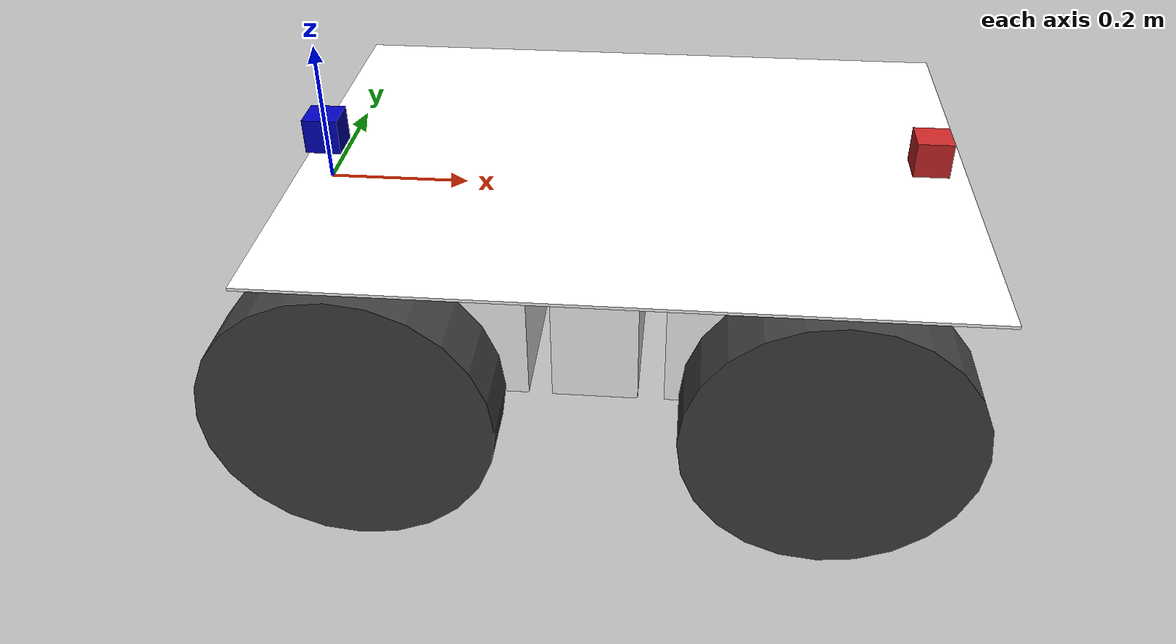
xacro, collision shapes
<?xml version="1.0"?>

<robot name="innok_heros_4w" xmlns:xacro="http://ros.org/wiki/xacro">

  <xacro:property name="PI" value="3.1415926535897931"/>
  <xacro:property name="wheel_radius" value="0.200" />
  <xacro:property name="wheel_width"  value="0.100" />
  <xacro:property name="wheel_mass"   value="5.4" />
  <xacro:property name="camera_size"   value="0.05" />
  <xacro:property name="camera_mass"   value="1e-5" />
  <xacro:property name="laser_size_x" value="0.04"/>
  <xacro:property name="laser_size_y" value="0.04"/>
  <xacro:property name="laser_size_z" value="0.04"/>
  <xacro:property name="laser_origin_x" value="0.85"/>
  <xacro:property name="laser_origin_y" value="0.0"/>
  <xacro:property name="laser_origin_z" value="0.025"/>

  <xacro:include filename="$(find auto_tractor)/urdf/heros_base_link.xacro"/>
  <xacro:include filename="$(find auto_tractor)/urdf/heros_wheel_tractor.xacro"/>
  <xacro:include filename="$(find auto_tractor)/urdf/heros_drive.xacro"/>
  <xacro:include filename="$(find auto_tractor)/urdf/heros_battery.xacro"/>
  <xacro:include filename="$(find auto_tractor)/urdf/heros_mounting_plate.xacro"/>

  <xacro:include filename="$(find auto_tractor)/urdf/heros_joint_pub.xacro" />
  <xacro:include filename="$(find auto_tractor)/urdf/heros_skid_drive.xacro" />

  <heros_base_link   							/>
  <heros_drive	 	  front_rear='front'    dx='0.782' flip_z='-1'	/>
  <heros_drive	 	  front_rear='rear'     dx='0.018' flip_z='1'	/>
  <heros_battery 	  name='battery_box'    dx='0.336'		/>
  <heros_mounting_plate   wheels='4'	 	dx='-0.02'		/>

  <heros_joint_pub joints='joint_base_wheel_rear_left, joint_base_wheel_rear_right, joint_base_wheel_front_left, joint_base_wheel_front_right'/>
  <heros_skid_drive/>

  <!-- Back Camera -->
  <link name="camera_link">
    <collision>
      <origin xyz="0 0 0" rpy="0 0 0"/>
      <geometry>
        <box size="${camera_size} ${camera_size} ${camera_size}"/>
      </geometry>
    </collision>

    <visual>
      <origin xyz="0 0 0" rpy="0 0 0"/>
      <geometry>
        <box size="${camera_size} ${camera_size} ${camera_size}"/>
      </geometry>
      <material name="dark blue">
        <color rgba="0 0 0.75 1"/>
      </material>

    </visual>

    <inertial>
      <mass value="${camera_mass}" />
      <origin xyz="0 0 0" rpy="0 0 0"/>
      <inertia ixx="1e-6" ixy="0" ixz="0" iyy="1e-6" iyz="0" izz="1e-6" />
    </inertial>
  </link>

  <joint name="camera_joint" type="fixed">
    <axis xyz="0 1 0" />
    <origin xyz="0.0 0.0 0.075" rpy="3.141592 3.141592 0"/>
    <parent link="base_link"/>
    <child link="camera_link"/>
  </joint>

  <gazebo reference="camera_link">
    <material>Gazebo/Blue</material>
    <sensor type="camera" name="camera1">
      <update_rate>30.0</update_rate>
      <camera name="head">
        <horizontal_fov>1.3962634</horizontal_fov>
        <image>
          <width>800</width>
          <height>800</height>
          <format>R8G8B8</format>
        </image>
        <clip>
          <near>0.02</near>
          <far>300</far>
        </clip>
        <noise>
          <type>gaussian</type>
          <!-- Noise is sampled independently per pixel on each frame.
               That pixel's noise value is added to each of its color
               channels, which at that point lie in the range [0,1]. -->
          <mean>0.0</mean>
          <stddev>0.007</stddev>
        </noise>
      </camera>
      <plugin name="camera_controller" filename="libgazebo_ros_camera.so">
        <alwaysOn>true</alwaysOn>
        <updateRate>0.0</updateRate>
        <cameraName>camera</cameraName>
        <imageTopicName>image_raw</imageTopicName>
        <cameraInfoTopicName>camera_info</cameraInfoTopicName>
        <frameName>camera_link</frameName>
        <hackBaseline>0.07</hackBaseline>
        <distortionK1>0.0</distortionK1>
        <distortionK2>0.0</distortionK2>
        <distortionK3>0.0</distortionK3>
        <distortionT1>0.0</distortionT1>
        <distortionT2>0.0</distortionT2>
      </plugin>
    </sensor>
  </gazebo>

  <!-- Laser Sensor -->
  <link name="sensor_laser">
    <visual>
      <geometry>
        <box size="${laser_size_x} ${laser_size_y} ${laser_size_z}"/>
      </geometry>
      <material name="black"/>
    </visual>
    <collision>
      <geometry>
        <box size="${laser_size_x} ${laser_size_y} ${laser_size_z}"/>
      </geometry>
    </collision>
    <inertial>
      <mass value="1e-5" />
      <inertia ixx="1e-6" ixy="0" ixz="0" iyy="1e-6" iyz="0" izz="1e-6" />
    </inertial>
  </link>

  <joint name="sensor_laser_joint" type="fixed">
    <origin xyz="${laser_origin_x} ${laser_origin_y} ${laser_origin_z}" rpy="0 0 0" />
    <parent link="base_link"/>
    <child link="sensor_laser" />
  </joint>

  <gazebo reference="sensor_laser">
    <material>Gazebo/Black</material>
    <sensor type="ray" name="head_hokuyo_sensor">
      <pose>0 0 0 0 0 0</pose>
      <visualize>true</visualize>
      <update_rate>20</update_rate>
      <ray>
        <scan>
          <horizontal>
            <samples>720</samples>
            <resolution>1</resolution>
            <min_angle>-1.570796</min_angle>
            <max_angle>1.570796</max_angle>
          </horizontal>
        </scan>
        <range>
          <min>0.10</min>
          <max>30.0</max>
          <resolution>0.01</resolution>
        </range>
        <noise>
          <type>gaussian</type>
          <mean>0.0</mean>
          <stddev>0.01</stddev>
        </noise>
      </ray>
      <plugin name="gazebo_ros_head_hokuyo_controller" filename="libgazebo_ros_laser.so">
        <topicName>laser_scan/scan</topicName>
        <frameName>sensor_laser</frameName>
      </plugin>
    </sensor>
  </gazebo>

  <!-- Front Depth Camera -->
  <link name="depth_camera">
    <visual>
      <geometry>
        <box size="${camera_size} ${camera_size} ${camera_size}"/>
      </geometry>
      <material name="red"/>
    </visual>
    <collision>
      <geometry>
        <box size="${camera_size} ${camera_size} ${camera_size}"/>
      </geometry>
    </collision>
    <inertial>
      <mass value="0.564" />
      <origin xyz="0 0 0" />
      <inertia ixx="0.003881243" ixy="0.0" ixz="0.0"
               iyy="0.000498940" iyz="0.0"
               izz="0.003879257" />
    </inertial>
  </link>

  <joint name="depth_camera_joint" type="fixed">
    <origin xyz="0.85 0.0 0.075" rpy="0 0 0" />
    <parent link="base_link"/>
    <child link="depth_camera" />
  </joint>

  <!-- The point cloud pose error is displayed in RVIZ,
  and an empty link and an empty joint are added here to adjust the point cloud tf pose -->
  <link name="camera_link_fake"></link>
  <joint name="camera_joint_fake" type="fixed">
    <origin xyz="0 0 0" rpy="-1.5708 0 -1.5708 "/>
    <parent link="depth_camera"/>
    <child link="camera_link_fake"/>
  </joint>-->

  <gazebo reference="depth_camera">
    <material>Gazebo/Red</material>
    <sensor name="camera" type="depth">
      <update_rate>20</update_rate>
      <camera>
        <horizontal_fov>1.047198</horizontal_fov>
        <image>
          <width>640</width>
          <height>480</height>
          <format>R8G8B8</format>
        </image>
        <clip>
          <near>1</near>
          <far>250</far>
        </clip>
      </camera>
      <plugin name="kinect_camera_controller" filename="libgazebo_ros_openni_kinect.so">
        <baseline>0.1</baseline>
        <alwaysOn>true</alwaysOn>
        <updateRate>10</updateRate>
        <cameraName>depth_camera</cameraName>
        <imageTopicName>/depth_camera/color/image_raw</imageTopicName>
        <cameraInfoTopicName>/depth_camera/color/camera_info</cameraInfoTopicName>
        <depthImageTopicName>/depth_camera/depth/image_raw</depthImageTopicName>
        <depthImageInfoTopicName>/depth_camera/depth/camera_info</depthImageInfoTopicName>
        <pointCloudTopicName>/depth_camera/depth/points</pointCloudTopicName>
        <frameName>camera_link_fake</frameName>
        <pointCloudCutoff>0.4</pointCloudCutoff>
        <distortionK1>0.0</distortionK1>
        <distortionK2>0.0</distortionK2>
        <distortionK3>0.0</distortionK3>
        <distortionT1>0.0</distortionT1>
        <distortionT2>0.0</distortionT2>
      </plugin>
    </sensor>
  </gazebo>

</robot>

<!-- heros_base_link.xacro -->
<robot xmlns:xacro="http://ros.org/wiki/xacro" name="heros_base_link">
<xacro:macro name="heros_base_link">

  <link name="base_link"/>

  <link name="beam_link">
    <inertial>
      <origin xyz="0.40 0 0.02" rpy="0 0 0" /> <mass value="2" />
      <inertia ixx="0.003" ixy="0" ixz="0" iyy="0.09" iyz="0" izz="0.09" />
    </inertial>
    <visual>
      <origin xyz="0 0 0" rpy="0 0 0" />
      <geometry> <mesh filename="package://auto_tractor/meshes/beam.STL" /> </geometry>
      <material name="white">
        <color rgba="1 1 1 1"/>
      </material>
    </visual>
    <collision>
      <origin xyz="0.4 0 0.02" rpy="0 0 0" />
      <geometry> <box size="0.8 0.160 0.040"/> </geometry>
    </collision>
  </link>

  <joint name="beam_joint" type="fixed">
    <origin
      xyz="0 0 0" rpy="0 0 0" />
    <parent link="base_link" />
    <child link="beam_link" />
    <axis xyz="0 0 0" />
  </joint>

</xacro:macro>
</robot>

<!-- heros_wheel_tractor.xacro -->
<robot xmlns:xacro="http://ros.org/wiki/xacro" name="heros_wheel">

 <xacro:macro name="heros_wheel" params="front_rear left_right flip_y flip_z">

  <link name="wheel_${front_rear}_${left_right}">
    <collision>
      <origin xyz="0 0.115 0" rpy="${-PI/2} 0 0"/>
      <geometry>
        <cylinder radius="${wheel_radius}" length="${wheel_width}" />
      </geometry>
    </collision>
    <visual>
      <origin xyz="0 0.115 0" rpy="${-PI/2} 0 0"/>
      <geometry>
        <mesh filename="package://auto_tractor/meshes/wheel_tractor.STL" />
      </geometry>
      <material name="">
        <color rgba="0.25 0.25 0.25 1" />
      </material>
    </visual>
    <inertial>
      <origin xyz="0 0.115 0" rpy="0 0 0"/>
      <mass value="${wheel_mass}"/>
      <inertia ixx="0.046" ixy="0" ixz="0" iyy="0.072" iyz="0" izz="0.045" />
    </inertial>
  </link>

  <gazebo reference="wheel_${front_rear}_${left_right}">
    <gravity>true</gravity>
    <mu1>1</mu1>
    <mu2>1</mu2>
    <kd>1</kd>
    <kp>10000000000.0</kp>
    <fdir1>0 0 1</fdir1>
    <selfCollide>false</selfCollide>
    <material>Gazebo/Grey</material>
  </gazebo>

  <joint name="joint_base_wheel_${front_rear}_${left_right}" type="continuous">
    <parent link="drive_box_${front_rear}"/>
    <child link="wheel_${front_rear}_${left_right}"/>
    <origin xyz="0.063 ${flip_y*flip_z * 0.162} -0.184" rpy="0 0 ${PI/2 - PI/2*flip_y*flip_z }"/>
    <axis xyz="0 ${flip_y * 1} 0" />
  </joint>

  <transmission name="trans_wheel_${front_rear}_${left_right}">
    <type>transmission_interface/SimpleTransmission</type>
    <joint name="joint_base_wheel_${front_rear}_${left_right}">
      <hardwareInterface>hardware_interface/VelocityJointInterface</hardwareInterface>
    </joint>
    <actuator name="motor_wheel_${front_rear}_${left_right}">
      <mechanicalReduction>100</mechanicalReduction>
    </actuator>
  </transmission>

 </xacro:macro>
</robot>

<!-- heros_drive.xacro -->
<robot xmlns:xacro="http://ros.org/wiki/xacro" name="heros_drive">
<xacro:macro name="heros_drive" params="front_rear dx flip_z">

  <heros_wheel front_rear="${front_rear}" left_right="left"  flip_y="1"  flip_z="${flip_z}"/>
  <heros_wheel front_rear="${front_rear}" left_right="right" flip_y="-1" flip_z="${flip_z}"/>

  <link name="drive_box_${front_rear}">
    <inertial>
      <origin xyz="0.122 -0.0026 -0.136" rpy="0 0 0" />
       <mass value="10.6" />
      <inertia ixx="0.316" ixy="0" ixz="0" iyy="0.166" iyz="0" izz="0.307" />
    </inertial>
    <visual>
      <origin xyz="0 0 0" rpy="0 0 0" />
      <geometry>
        <mesh filename="package://auto_tractor/meshes/drive_box.STL" />
      </geometry>
      <material name="white">
        <color rgba="1 1 1 1"/>
      </material>
    </visual>
    <collision>
      <origin xyz="0.142 0 -0.124" rpy="0 0 0" />
      <geometry>
        <box size="0.284 0.328 0.248"/>
      </geometry>
    </collision>
  </link>

  <joint name="drive_box_joint_${front_rear}" type="fixed">
    <origin xyz="${dx} 0 -0.0065" rpy="0 0 ${PI/2 - PI/2*flip_z }" />
    <parent link="beam_link" />
    <child link="drive_box_${front_rear}" />
    <axis xyz="0 0 0" />
  </joint>

</xacro:macro>
</robot>

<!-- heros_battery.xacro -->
<robot xmlns:xacro="http://ros.org/wiki/xacro" name="heros_battery">
<xacro:macro name="heros_battery" params="name dx">>

  <link name="${name}">
    <inertial>
      <origin xyz="0.064 0 -0.1" rpy="0 0 0" />
      <mass value="4.71" />
      <inertia ixx="0.114" ixy="0" ixz="0" iyy="0.05" iyz="0" izz="0.078" />
    </inertial>
    <visual>
      <origin xyz="0 0 0" rpy="0 0 0" />
      <geometry>
        <mesh filename="package://auto_tractor/meshes/battery_box.STL" />
      </geometry>
      <material name="white">
        <color rgba="1 1 1 1"/>
      </material>
    </visual>
    <collision>
      <origin xyz="0.062 0 -0.124" rpy="0 0 0" />
      <geometry>
        <box size="0.124 0.328 0.248"/>
      </geometry>
    </collision>
  </link>

  <joint name="battery_box_joint" type="fixed">
    <origin
      xyz="${dx} 0 -0.007" rpy="0 0 0" />
    <parent link="beam_link" />
    <child link="${name}" />
    <axis xyz="0 0 0" />
  </joint>

</xacro:macro>
</robot>

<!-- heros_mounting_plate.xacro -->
<robot xmlns:xacro="http://ros.org/wiki/xacro" name="heros_plate">
<xacro:macro name="heros_mounting_plate" params="wheels dx">

  <link name="mounting_plate">
    <inertial>
      <origin
        xyz="0.319 0 -0.002" rpy="0 0 0" />
      <mass value="4.35" />
      <inertia ixx="0.133" ixy="0" ixz="0" iyy="0.278" iyz="0" izz="0.410" />
    </inertial>
    <visual>
      <origin xyz="0 0 0" rpy="0 0 0" />
      <geometry>
        <mesh filename="package://auto_tractor/meshes/mounting_plate_${wheels}w.STL" />
      </geometry>
      <material name="white">
        <color rgba="1 1 1 1"/>
      </material>
    </visual>
    <collision>
      <origin xyz="0.46 0 -0.002" rpy="0 0 0" />
      <geometry>
        <box size="0.92 0.72 0.004"/>
      </geometry>
    </collision>
  </link>

  <joint name="mounting_plate_joint" type="fixed">
    <origin xyz=" ${dx} 0 0.05" rpy="0 0 0" />
    <parent link="beam_link" />
    <child link="mounting_plate" />
    <axis xyz="0 0 0" />
  </joint>

</xacro:macro>
</robot>
